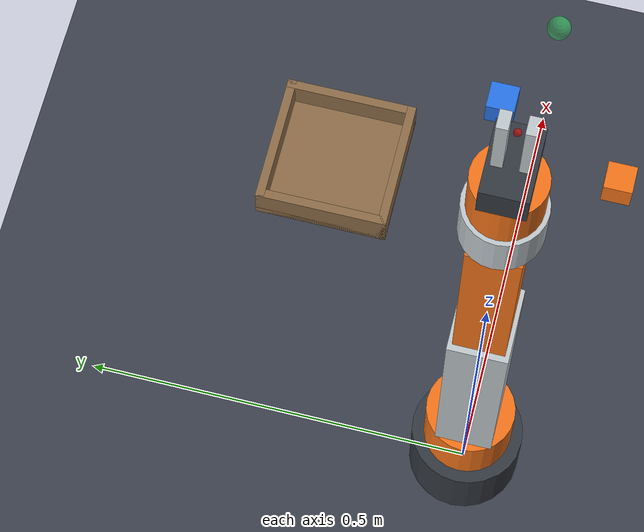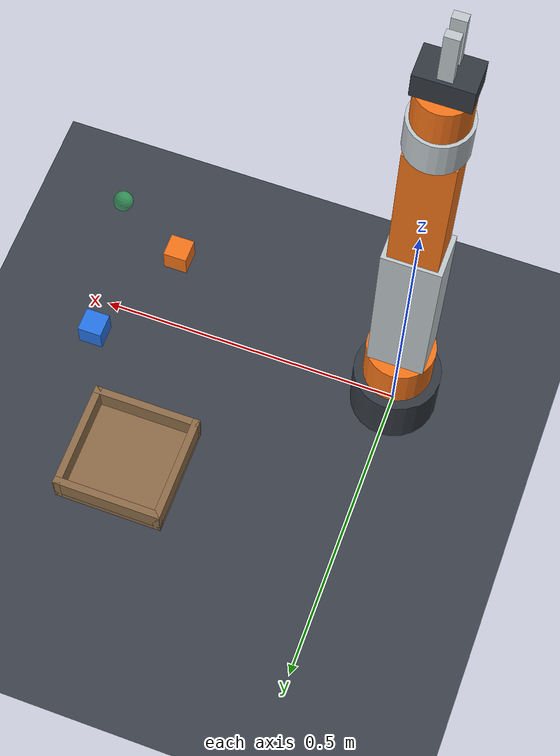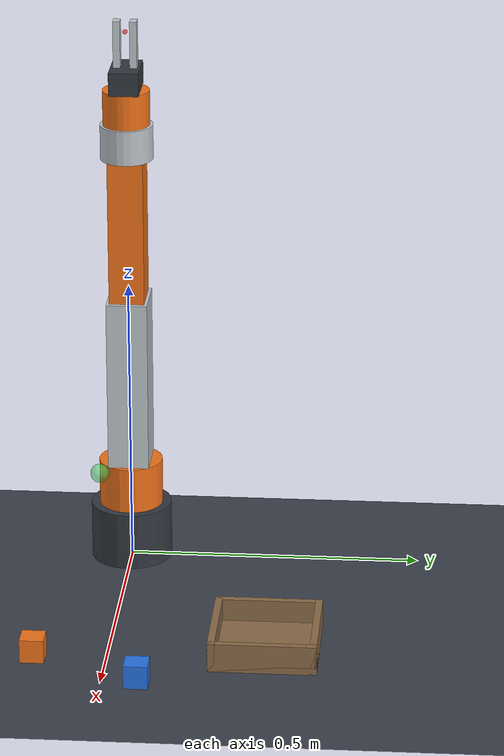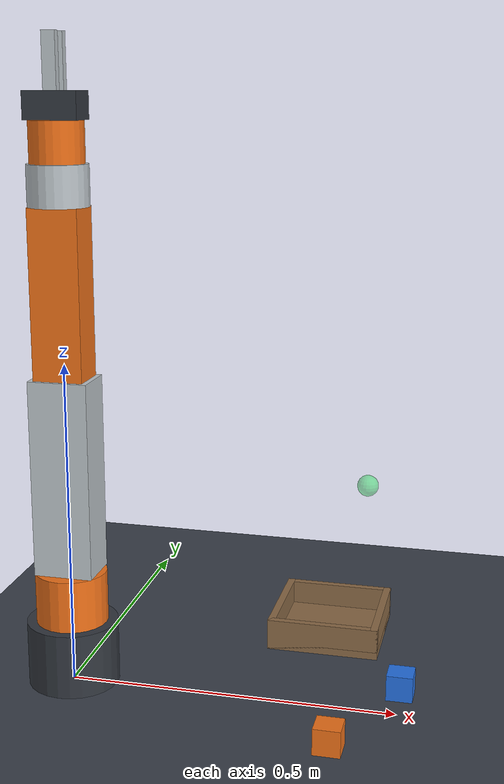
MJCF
<mujoco model="handarm">
  <compiler angle="radian" autolimits="true"/>
  <option timestep="0.002" integrator="implicitfast" gravity="0 0 -9.81"/>

  <visual>
    <headlight ambient="0.4 0.4 0.4" diffuse="0.6 0.6 0.6"/>
    <quality shadowsize="4096"/>
    <global offwidth="1280" offheight="960"/>
    <map znear="0.01"/>
  </visual>

  <asset>
    <texture name="grid" type="2d" builtin="checker" width="512" height="512"
             rgb1="0.20 0.22 0.26" rgb2="0.26 0.28 0.33"/>
    <material name="grid" texture="grid" texrepeat="6 6" reflectance="0.1"/>
    <material name="dark"   rgba="0.20 0.22 0.25 1"/>
    <material name="orange" rgba="0.95 0.45 0.10 1"/>
    <material name="steel"  rgba="0.75 0.78 0.80 1"/>
    <material name="blue"   rgba="0.15 0.45 0.90 1"/>
    <material name="green"  rgba="0.20 0.75 0.35 1"/>
    <material name="tray"   rgba="0.55 0.42 0.28 1"/>
  </asset>

  <default>
    <joint damping="1.0" armature="0.1"/>
    <geom friction="1.0 0.02 0.001" solimp="0.95 0.99 0.001" solref="0.004 1"/>
    <default class="finger">
      <geom friction="1.8 0.05 0.002" condim="4"/>
      <joint damping="5.0"/>
    </default>
    <default class="object">
      <geom condim="4" friction="1.0 0.02 0.001"/>
    </default>
  </default>

  <worldbody>
    <light pos="0.5 -0.6 1.6" dir="-0.3 0.4 -1" directional="true" castshadow="true"/>
    <geom name="floor" type="plane" size="3 3 0.1" material="grid"/>

    <camera name="demo" pos="1.35 -0.85 0.75" xyaxes="0.55 0.835 0  -0.28 0.185 0.94"/>

    <!-- IK target marker (kinematic only, no collision) -->
    <body name="target" mocap="true" pos="0.45 0 0.35">
      <geom type="sphere" size="0.015" rgba="0.2 0.9 0.4 0.5" contype="0" conaffinity="0"/>
    </body>

    <!-- ===================== 6-DOF arm ===================== -->
    <body name="base" pos="0 0 0">
      <geom name="base_geom" type="cylinder" size="0.07 0.05" pos="0 0 0.05"
            material="dark" mass="4.0"/>
      <body name="link1" gravcomp="1" pos="0 0 0.10">
        <joint name="j1" axis="0 0 1" range="-2.96 2.96"/>
        <geom type="cylinder" size="0.055 0.04" pos="0 0 0.04" material="orange" mass="2.5"/>
        <body name="link2" gravcomp="1" pos="0 0 0.08">
          <joint name="j2" axis="0 1 0" range="-1.92 1.92"/>
          <geom type="box" size="0.045 0.035 0.15" pos="0 0 0.15" material="steel" mass="2.2"/>
          <body name="link3" gravcomp="1" pos="0 0 0.30">
            <joint name="j3" axis="0 1 0" range="-2.44 2.44"/>
            <geom type="box" size="0.0375 0.03 0.125" pos="0 0 0.125" material="orange" mass="1.6"/>
            <body name="link4" gravcomp="1" pos="0 0 0.25">
              <joint name="j4" axis="0 0 1" range="-6.2832 6.2832"/>
              <geom type="cylinder" size="0.045 0.03" pos="0 0 0.03" material="steel" mass="0.9"/>
              <body name="link5" gravcomp="1" pos="0 0 0.06">
                <joint name="j5" axis="0 1 0" range="-2.09 2.09"/>
                <geom type="cylinder" size="0.04 0.03" pos="0 0 0.03" material="orange" mass="0.7"/>
                <body name="link6" gravcomp="1" pos="0 0 0.06">
                  <joint name="j6" axis="0 0 1" range="-6.2832 6.2832"/>
                  <geom type="box" size="0.04 0.025 0.02" pos="0 0 0.02" material="dark" mass="0.5"/>
                  <site name="tcp" pos="0 0 0.10" size="0.004" rgba="1 0 0 0.6"/>
                  <body name="finger_left" gravcomp="1" pos="0 0.008 0.04">
                    <joint name="finger_left" type="slide" axis="0 1 0" range="0 0.035" class="finger"/>
                    <geom type="box" size="0.01 0.006 0.04" pos="0 0.006 0.04"
                          material="steel" mass="0.08" class="finger"/>
                  </body>
                  <body name="finger_right" gravcomp="1" pos="0 -0.008 0.04">
                    <joint name="finger_right" type="slide" axis="0 -1 0" range="0 0.035" class="finger"/>
                    <geom type="box" size="0.01 0.006 0.04" pos="0 -0.006 0.04"
                          material="steel" mass="0.08" class="finger"/>
                  </body>
                </body>
              </body>
            </body>
          </body>
        </body>
      </body>
    </body>

    <!-- ===================== scene objects ===================== -->
    <body name="cube_orange" pos="0.42 -0.12 0.02">
      <freejoint/>
      <geom type="box" size="0.02 0.02 0.02" material="orange" mass="0.06" class="object"/>
    </body>
    <body name="cube_blue" pos="0.50 0.06 0.02">
      <freejoint/>
      <geom type="box" size="0.02 0.02 0.02" material="blue" mass="0.06" class="object"/>
    </body>

    <body name="tray" pos="0.36 0.26 0">
      <geom type="box" size="0.09 0.09 0.006" pos="0 0 0.006" material="tray"/>
      <geom type="box" size="0.09 0.006 0.025" pos="0 0.084 0.025" material="tray"/>
      <geom type="box" size="0.09 0.006 0.025" pos="0 -0.084 0.025" material="tray"/>
      <geom type="box" size="0.006 0.09 0.025" pos="0.084 0 0.025" material="tray"/>
      <geom type="box" size="0.006 0.09 0.025" pos="-0.084 0 0.025" material="tray"/>
    </body>
  </worldbody>

  <actuator>
    <position name="a1" joint="j1" kp="300" kv="30" ctrlrange="-2.96 2.96" forcerange="-150 150"/>
    <position name="a2" joint="j2" kp="400" kv="40" ctrlrange="-1.92 1.92" forcerange="-150 150"/>
    <position name="a3" joint="j3" kp="300" kv="30" ctrlrange="-2.44 2.44" forcerange="-120 120"/>
    <position name="a4" joint="j4" kp="100" kv="10" ctrlrange="-6.2832 6.2832" forcerange="-60 60"/>
    <position name="a5" joint="j5" kp="100" kv="10" ctrlrange="-2.09 2.09" forcerange="-60 60"/>
    <position name="a6" joint="j6" kp="60"  kv="6"  ctrlrange="-6.2832 6.2832" forcerange="-40 40"/>
    <position name="grip_left"  joint="finger_left"  kp="120" kv="8" ctrlrange="0 0.035" forcerange="-40 40"/>
    <position name="grip_right" joint="finger_right" kp="120" kv="8" ctrlrange="0 0.035" forcerange="-40 40"/>
  </actuator>
</mujoco>
